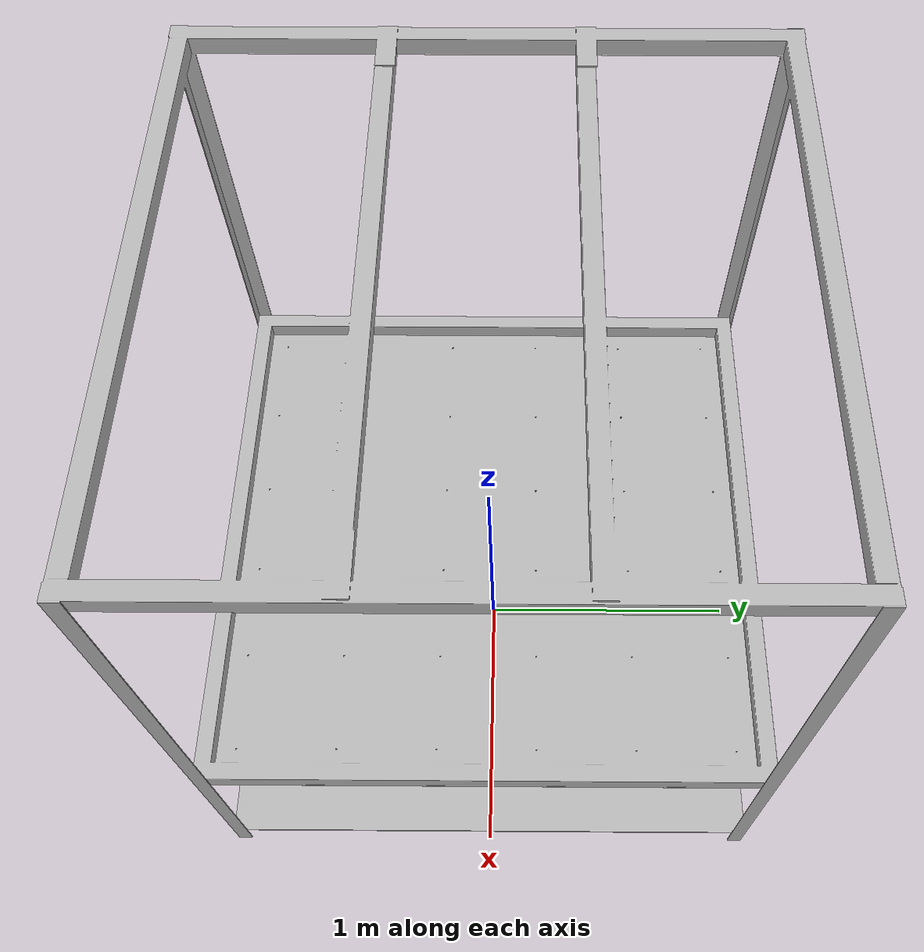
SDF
<sdf version='1.6'>
  <model name='cage-ABB'>
    <link name='cage-ABB'>
      <pose frame=''>0 0 0 0 -0 0</pose>
      <inertial>
        <pose frame=''>0 0 0 0 -0 0</pose>
        <mass>260.72</mass>
        <inertia>
          <ixx>292.74</ixx>
          <ixy>-0.045286</ixy>
          <ixz>0.064766</ixz>
          <iyy>295.46</iyy>
          <iyz>-0.13144</iyz>
          <izz>276.65</izz>
        </inertia>
      </inertial>
      <collision name='cage-ABB_collision'>
        <pose frame=''>0 0 0 1.5708 -0 0</pose>
        <geometry>
          <mesh>
            <scale>1 1 1</scale>
            <uri>model://cage-ABB/meshes/cage-ABB.STL</uri>
          </mesh>
        </geometry>
      </collision>
      <visual name='cage-ABB_visual'>
        <pose frame=''>0 0 0 1.5708 -0 0</pose>
        <geometry>
          <mesh>
            <scale>1 1 1</scale>
            <uri>model://cage-ABB/meshes/cage-ABB.STL</uri>
          </mesh>
        </geometry>
      </visual>
    </link>
  </model>
</sdf>
